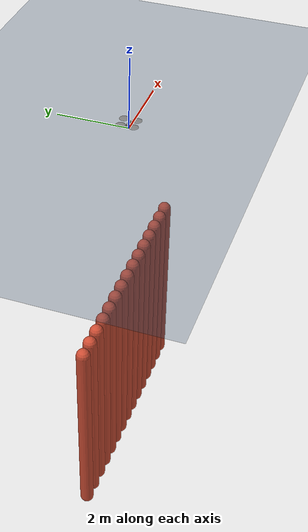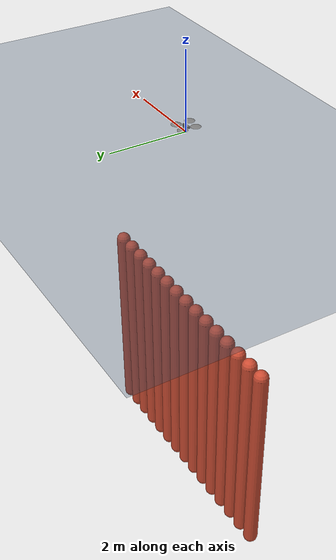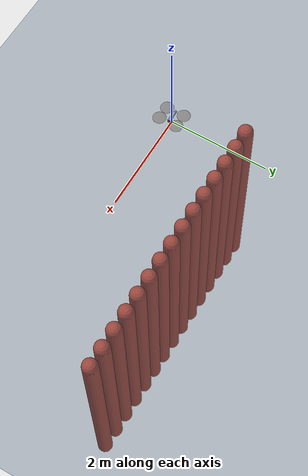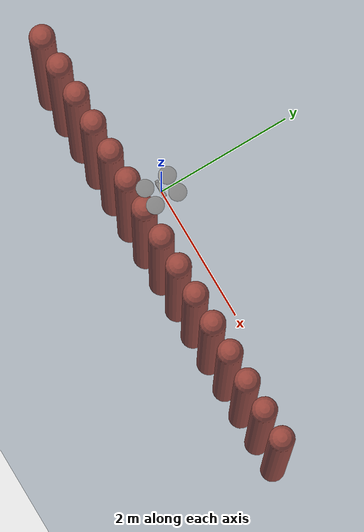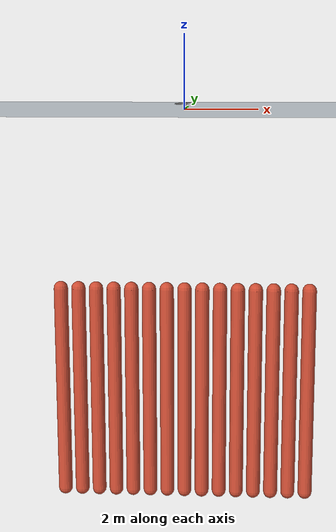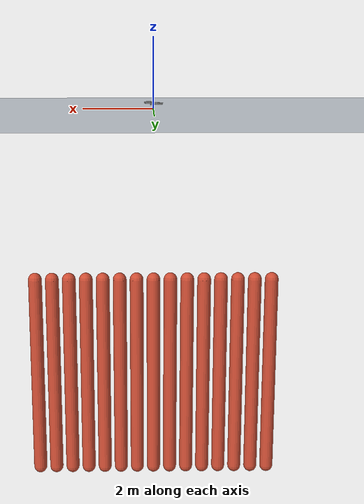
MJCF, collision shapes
<mujoco model="Skydio X2 scene">
  <include file="x2.xml"/>
  <include file="../../../obstacles/cylinder.xml"/>
  <statistic center="0 0 0.1" extent="0.6" meansize=".05"/>

  <visual>
    <headlight diffuse="0.6 0.6 0.6" ambient="0.3 0.3 0.3" specular="0 0 0"/>
    <rgba haze="0.15 0.25 0.35 1"/>
    <global azimuth="-20" elevation="-20" ellipsoidinertia="true" offwidth="1920" offheight="720"/>
  </visual>

  <asset>
    <texture type="skybox" builtin="gradient" rgb1="0.3 0.5 0.7" rgb2="0 0 0" width="512" height="3072"/>
    <texture type="2d" name="groundplane" builtin="checker" mark="edge" rgb1="0.2 0.3 0.4" rgb2="0.1 0.2 0.3"
      markrgb="0.8 0.8 0.8" width="300" height="300"/>
    <material name="groundplane" texture="groundplane" texuniform="true" texrepeat="5 5" reflectance="0.2"/>
  </asset>

  <worldbody>
    <light pos="0 0 1.5" dir="0 0 -1" directional="true"/>
    <geom name="floor" size="0 0 0.05" type="plane" material="groundplane"/>
  </worldbody>
</mujoco>

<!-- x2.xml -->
<mujoco model="Skydio X2">
  <compiler autolimits="true" assetdir="assets"/>

  <option timestep="0.01" density="1.225" viscosity="1.8e-5"/>

  <default>
    <default class="x2">
      <geom mass="0"/>
      <motor ctrlrange="0 13"/>
      <mesh scale="0.01 0.01 0.01"/>
      <default class="visual">
        <geom group="2" type="mesh" contype="0" conaffinity="0"/>
      </default>
      <default class="collision">
        <geom group="3" type="box"/>
        <default class="rotor">
          <geom type="ellipsoid" size=".13 .13 .01"/>
        </default>
      </default>
      <site group="5"/>
    </default>
  </default>

  <asset>
    <texture type="2d" file="X2_lowpoly_texture_SpinningProps_1024.png"/>
    <material name="phong3SG" texture="X2_lowpoly_texture_SpinningProps_1024"/>
    <material name="invisible" rgba="0 0 0 0"/>

    <mesh class="x2" file="X2_lowpoly.obj"/>
  </asset>

  <worldbody>
    <light name="spotlight" mode="targetbodycom" target="x2" pos="0 -1 2"/>
    <body name="x2" pos="0 0 0.1" childclass="x2">
      <freejoint/>
      <camera name="track" pos="-1 0 .5" xyaxes="0 -1 0 1 0 2" mode="trackcom"/>
      <site name="imu" pos="0 0 .02"/>
      <geom material="phong3SG" mesh="X2_lowpoly" class="visual" quat="0 0 1 1"/>
      <geom class="collision" size=".06 .027 .02" pos=".04 0 .02"/>
      <geom class="collision" size=".06 .027 .02" pos=".04 0 .06"/>
      <geom class="collision" size=".05 .027 .02" pos="-.07 0 .065"/>
      <geom class="collision" size=".023 .017 .01" pos="-.137 .008 .065" quat="1 0 0 1"/>
      <geom name="rotor1" class="rotor" pos="-.14 -.18 .05" mass=".25"/>
      <geom name="rotor2" class="rotor" pos="-.14 .18 .05" mass=".25"/>
      <geom name="rotor3" class="rotor" pos=".14 .18 .08" mass=".25"/>
      <geom name="rotor4" class="rotor" pos=".14 -.18 .08" mass=".25"/>
      <geom size=".16 .04 .02" pos="0 0 0.02" type="ellipsoid" mass=".325" class="visual" material="invisible"/>
      <site name="thrust1" pos="-.14 -.18 .05"/>
      <site name="thrust2" pos="-.14 .18 .05"/>
      <site name="thrust3" pos=".14 .18 .08"/>
      <site name="thrust4" pos=".14 -.18 .08"/>
      <site name="lidar_front" pos="0 0 0.03" zaxis="1 0 0"/>
      <site name="lidar_left"  pos="0 0 0.03" zaxis="0 1 0"/>
      <site name="lidar_back"  pos="0 0 0.03" zaxis="-1 0 0"/>
      <site name="lidar_right" pos="0 0 0.03" zaxis="0 -1 0"/>
      <site name="lidar_up"    pos="0 0 0.03" zaxis="0 0 1"/>
      <site name="lidar_down"  pos="0 0 0.03" zaxis="0 0 -1"/>
      <site name="lidar_front_left"  pos="0 0 0.03" zaxis="1 1 0"/>
      <site name="lidar_front_right"  pos="0 0 0.03" zaxis="1 -1 0"/>
      <site name="lidar_back_left"  pos="0 0 0.03" zaxis="-1 1 0"/>
      <site name="lidar_back_right"  pos="0 0 0.03" zaxis="-1 -1 0"/>
      <site name="lidar_up_left"    pos="0 0 0.03" zaxis="0 1 1"/>
      <site name="lidar_up_right"    pos="0 0 0.03" zaxis="0 -1 1"/>
      <site name="lidar_up_front"    pos="0 0 0.03" zaxis="1 0 1"/>
      <site name="lidar_up_back"    pos="0 0 0.03" zaxis="-1 0 1"/>
      <site name="lidar_down_left"  pos="0 0 0.03" zaxis="0 1 -1"/>
      <site name="lidar_down_right"  pos="0 0 0.03" zaxis="0 -1 -1"/>
      <site name="lidar_down_front"  pos="0 0 0.03" zaxis="1 0 -1"/>
      <site name="lidar_down_back"  pos="0 0 0.03" zaxis="-1 0 -1"/>

    </body>
  </worldbody>

  <actuator>
    <motor class="x2" name="thrust1" site="thrust1" gear="0 0 1 0 0 -.0201"/>
    <motor class="x2" name="thrust2" site="thrust2" gear="0 0 1 0 0  .0201"/>
    <motor class="x2" name="thrust3" site="thrust3" gear="0 0 1 0 0 -.0201"/>
    <motor class="x2" name="thrust4" site="thrust4" gear="0 0 1 0 0  .0201"/>
  </actuator>

  <sensor>
    <gyro name="body_gyro" site="imu"/>
    <accelerometer name="body_linacc" site="imu"/>
    <framequat name="body_quat" objtype="site" objname="imu"/>
    <rangefinder name="lidar_front" site="lidar_front"/>
    <rangefinder name="lidar_left" site="lidar_left"/>
    <rangefinder name="lidar_back" site="lidar_back"/>
    <rangefinder name="lidar_right" site="lidar_right"/>
    <rangefinder name="lidar_up" site="lidar_up"/>
    <rangefinder name="lidar_down" site="lidar_down"/>
    <rangefinder name="lidar_front_left" site="lidar_front_left"/>
    <rangefinder name="lidar_front_right" site="lidar_front_right"/>
    <rangefinder name="lidar_back_left" site="lidar_back_left"/>
    <rangefinder name="lidar_back_right" site="lidar_back_right"/>
    <rangefinder name="lidar_up_left" site="lidar_up_left"/>
    <rangefinder name="lidar_up_right" site="lidar_up_right"/>
    <rangefinder name="lidar_up_front" site="lidar_up_front"/>
    <rangefinder name="lidar_up_back" site="lidar_up_back"/>
    <rangefinder name="lidar_down_left" site="lidar_down_left"/>
    <rangefinder name="lidar_down_right" site="lidar_down_right"/>
    <rangefinder name="lidar_down_front" site="lidar_down_front"/>
    <rangefinder name="lidar_down_back" site="lidar_down_back"/>
  </sensor>

  <keyframe>
    <key name="hover" qpos="0 0 .3 1 0 0 0" ctrl="3.2495625 3.2495625 3.2495625 3.2495625"/>
  </keyframe>
</mujoco>

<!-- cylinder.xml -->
<mujoco>
  <worldbody>
    <!-- Fixed obstacle pool parked below the arena until reset() moves them. -->
    <body name="obstacle_0" mocap="true" pos="-3.5 0 -8">
      <geom name="obstacle_0_geom" type="capsule" size="0.2 3" rgba="0.8 0.3 0.2 1"/>
    </body>
    <body name="obstacle_1" mocap="true" pos="-3 0 -8">
      <geom name="obstacle_1_geom" type="capsule" size="0.2 3" rgba="0.8 0.3 0.2 1"/>
    </body>
    <body name="obstacle_2" mocap="true" pos="-2.5 0 -8">
      <geom name="obstacle_2_geom" type="capsule" size="0.2 3" rgba="0.8 0.3 0.2 1"/>
    </body>
    <body name="obstacle_3" mocap="true" pos="-2 0 -8">
      <geom name="obstacle_3_geom" type="capsule" size="0.2 3" rgba="0.8 0.3 0.2 1"/>
    </body>
    <body name="obstacle_4" mocap="true" pos="-1.5 0 -8">
      <geom name="obstacle_4_geom" type="capsule" size="0.2 3" rgba="0.8 0.3 0.2 1"/>
    </body>
    <body name="obstacle_5" mocap="true" pos="-1 0 -8">
      <geom name="obstacle_5_geom" type="capsule" size="0.2 3" rgba="0.8 0.3 0.2 1"/>
    </body>
    <body name="obstacle_6" mocap="true" pos="-0.5 0 -8">
      <geom name="obstacle_6_geom" type="capsule" size="0.2 3" rgba="0.8 0.3 0.2 1"/>
    </body>
    <body name="obstacle_7" mocap="true" pos="0 0 -8">
      <geom name="obstacle_7_geom" type="capsule" size="0.2 3" rgba="0.8 0.3 0.2 1"/>
    </body>
    <body name="obstacle_8" mocap="true" pos="0.5 0 -8">
      <geom name="obstacle_8_geom" type="capsule" size="0.2 3" rgba="0.8 0.3 0.2 1"/>
    </body>
    <body name="obstacle_9" mocap="true" pos="1 0 -8">
      <geom name="obstacle_9_geom" type="capsule" size="0.2 3" rgba="0.8 0.3 0.2 1"/>
    </body>
    <body name="obstacle_10" mocap="true" pos="1.5 0 -8">
      <geom name="obstacle_10_geom" type="capsule" size="0.2 3" rgba="0.8 0.3 0.2 1"/>
    </body>
    <body name="obstacle_11" mocap="true" pos="2 0 -8">
      <geom name="obstacle_11_geom" type="capsule" size="0.2 3" rgba="0.8 0.3 0.2 1"/>
    </body>
    <body name="obstacle_12" mocap="true" pos="2.5 0 -8">
      <geom name="obstacle_12_geom" type="capsule" size="0.2 3" rgba="0.8 0.3 0.2 1"/>
    </body>
    <body name="obstacle_13" mocap="true" pos="3 0 -8">
      <geom name="obstacle_13_geom" type="capsule" size="0.2 3" rgba="0.8 0.3 0.2 1"/>
    </body>
    <body name="obstacle_14" mocap="true" pos="3.5 0 -8">
      <geom name="obstacle_14_geom" type="capsule" size="0.2 3" rgba="0.8 0.3 0.2 1"/>
    </body>
  </worldbody>
</mujoco>
